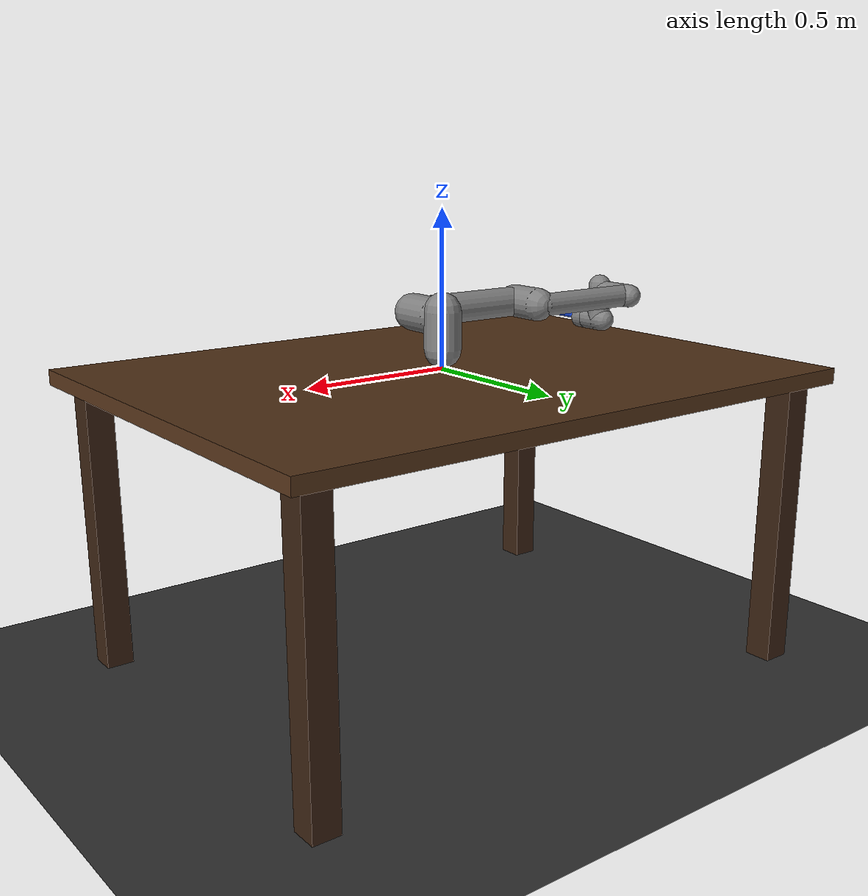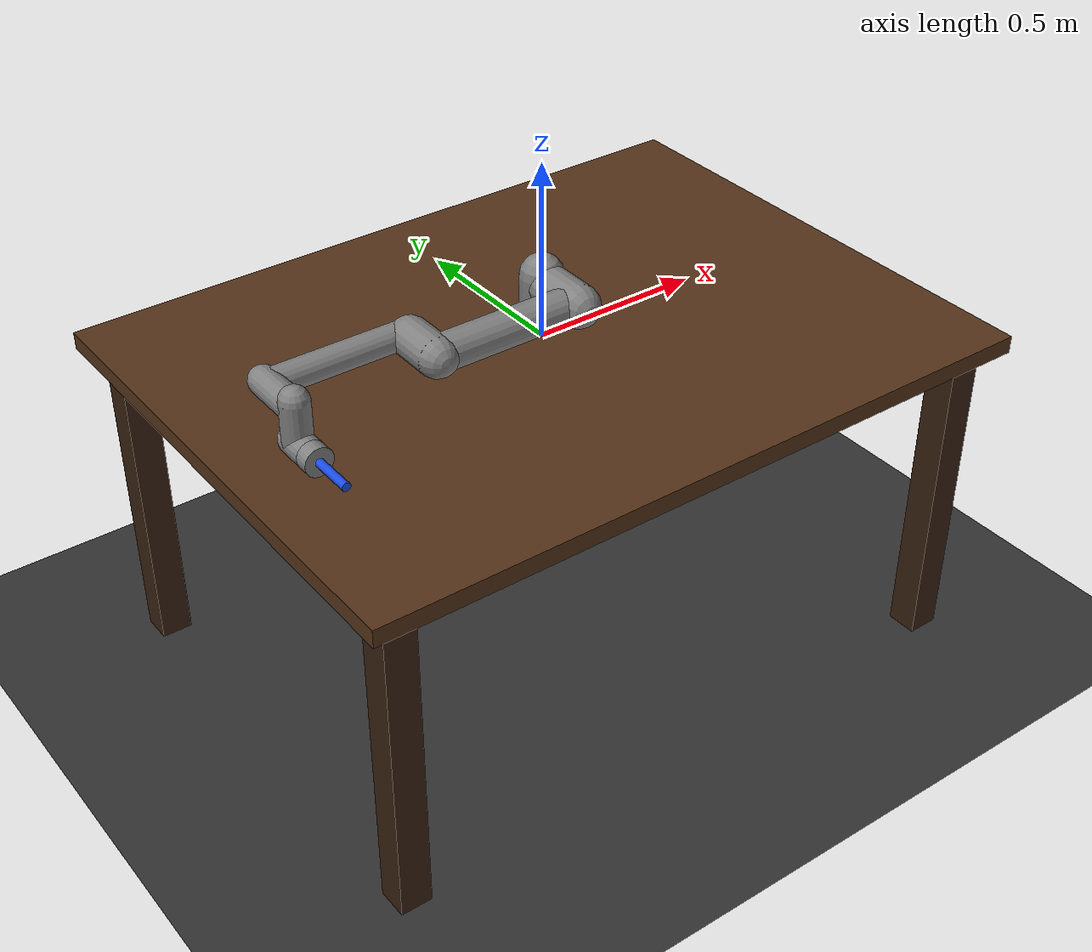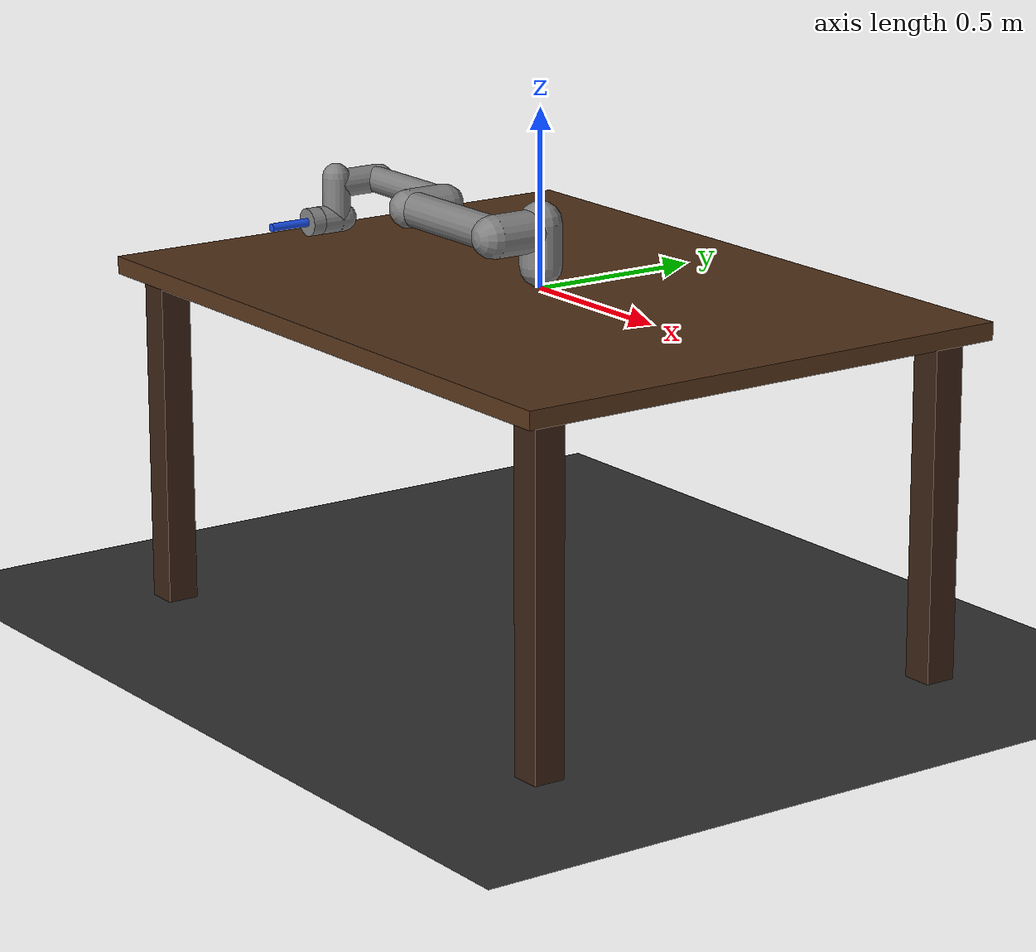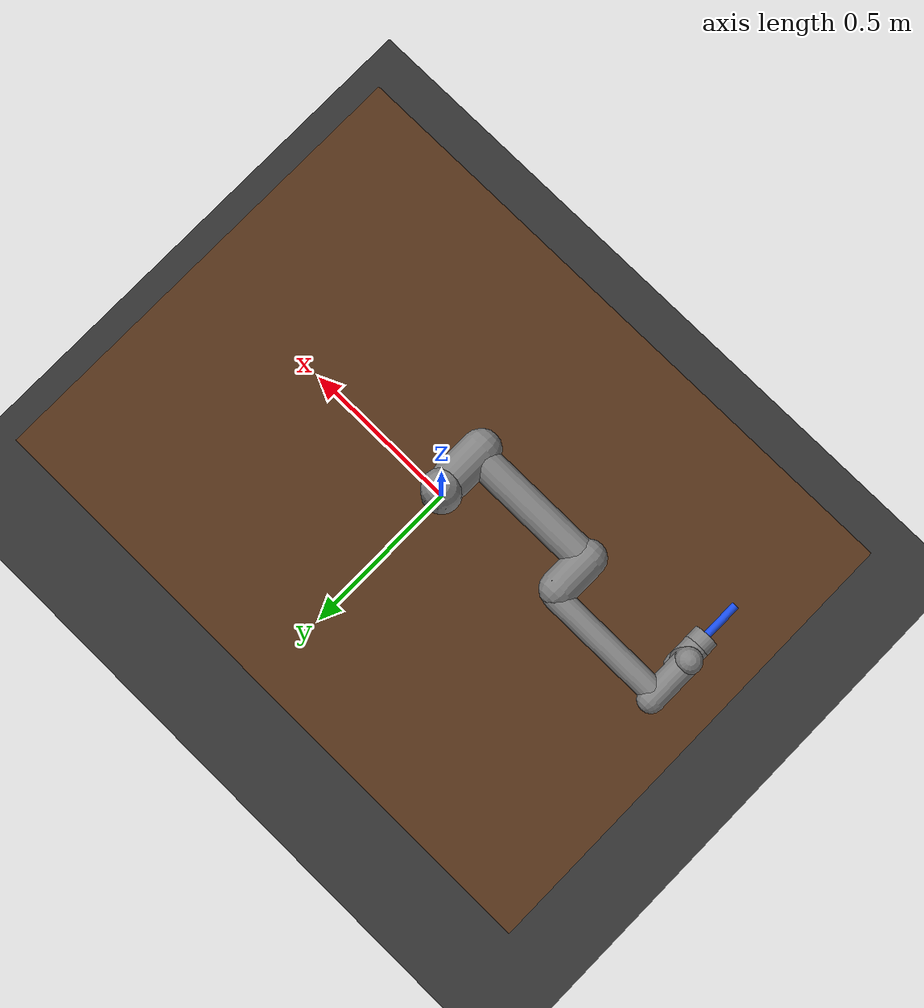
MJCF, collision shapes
<mujoco model="ur5e_table_scene">
  <compiler angle="radian" autolimits="true"/>

  <!-- UR5e from MuJoCo Menagerie.
       Do not change the robot physical model. -->
  <include file="ur5e_assignment.xml"/>

  <option timestep="0.002" gravity="0 0 -9.81"/>

  <statistic center="0.35 0 -0.1" extent="2.2"/>

  <visual>
    <global azimuth="135" elevation="-25"/>
    <headlight diffuse="0.6 0.6 0.6" ambient="0.2 0.2 0.2" specular="0.2 0.2 0.2"/>
  </visual>

  <asset>
    <texture name="floor_grid" type="2d" builtin="checker"
             width="512" height="512"
             rgb1="0.16 0.16 0.16" rgb2="0.24 0.24 0.24"/>

    <material name="floor_mat" texture="floor_grid" texrepeat="4 4" reflectance="0.15"/>
    <material name="table_top_mat" rgba="0.33 0.20 0.10 1"/>
    <material name="table_leg_mat" rgba="0.22 0.13 0.07 1"/>
  </asset>

  <worldbody>
    <!-- Floor is 1 m below the robot base/tabletop. -->
    <geom name="floor"
          type="plane"
          pos="0 0 -1.0"
          size="4 4 0.05"
          material="floor_mat"
          contype="1"
          conaffinity="1"/>

    <light name="key_light"
           pos="0 -3 3"
           dir="0 1 -1"
           diffuse="1 1 1"/>

    <light name="fill_light"
           pos="3 2 2"
           dir="-1 -1 -1"
           diffuse="0.45 0.45 0.45"/>

    <!--
      Assignment table dimensions:
      Full size: 2.0 m length x 1.5 m width x 1.0 m height
    -->

    <body name="table" pos="0 0 0">
      <geom name="table_top"
            type="box"
            pos="0 0 -0.025"
            size="1.0 0.75 0.025"
            material="table_top_mat"
            contype="1"
            conaffinity="1"/>

      <!--Legs-->
      <geom name="table_leg_front_left"
            type="box"
            pos="0.90 0.65 -0.525"
            size="0.045 0.045 0.475"
            material="table_leg_mat"
            contype="1"
            conaffinity="1"/>

      <geom name="table_leg_front_right"
            type="box"
            pos="0.90 -0.65 -0.525"
            size="0.045 0.045 0.475"
            material="table_leg_mat"
            contype="1"
            conaffinity="1"/>

      <geom name="table_leg_back_left"
            type="box"
            pos="-0.90 0.65 -0.525"
            size="0.045 0.045 0.475"
            material="table_leg_mat"
            contype="1"
            conaffinity="1"/>

      <geom name="table_leg_back_right"
            type="box"
            pos="-0.90 -0.65 -0.525"
            size="0.045 0.045 0.475"
            material="table_leg_mat"
            contype="1"
            conaffinity="1"/>
    </body>

  </worldbody>
</mujoco>

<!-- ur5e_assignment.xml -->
<mujoco model="ur5e">
  <compiler angle="radian" meshdir="assets" autolimits="true" />

  <option integrator="implicitfast" />

  <default>
    <default class="ur5e">
      <material specular="0.5" shininess="0.25" />
      <joint axis="0 1 0" range="-6.28319 6.28319" armature="0.1" />
      <general gaintype="fixed" biastype="affine" ctrlrange="-6.2831 6.2831" gainprm="2000" biasprm="0 -2000 -400" forcerange="-150 150" />
      <default class="size3">
        <default class="size3_limited">
          <joint range="-3.1415 3.1415" />
          <general ctrlrange="-3.1415 3.1415" />
        </default>
      </default>
      <default class="size1">
        <general gainprm="500" biasprm="0 -500 -100" forcerange="-28 28" />
      </default>
      <default class="visual">
        <geom type="mesh" contype="0" conaffinity="0" group="2" />
      </default>
      <default class="collision">
        <geom type="capsule" group="3" />
        <default class="eef_collision">
          <geom type="cylinder" />
        </default>
      </default>
      <site size="0.001" rgba="0.5 0.5 0.5 0.3" group="4" />
    </default>
  </default>

  <asset>
    <material class="ur5e" name="black" rgba="0.033 0.033 0.033 1" />
    <material class="ur5e" name="jointgray" rgba="0.278 0.278 0.278 1" />
    <material class="ur5e" name="linkgray" rgba="0.82 0.82 0.82 1" />
    <material class="ur5e" name="urblue" rgba="0.49 0.678 0.8 1" />

    <mesh file="assets/base_0.obj" />
    <mesh file="assets/base_1.obj" />
    <mesh file="assets/shoulder_0.obj" />
    <mesh file="assets/shoulder_1.obj" />
    <mesh file="assets/shoulder_2.obj" />
    <mesh file="assets/upperarm_0.obj" />
    <mesh file="assets/upperarm_1.obj" />
    <mesh file="assets/upperarm_2.obj" />
    <mesh file="assets/upperarm_3.obj" />
    <mesh file="assets/forearm_0.obj" />
    <mesh file="assets/forearm_1.obj" />
    <mesh file="assets/forearm_2.obj" />
    <mesh file="assets/forearm_3.obj" />
    <mesh file="assets/wrist1_0.obj" />
    <mesh file="assets/wrist1_1.obj" />
    <mesh file="assets/wrist1_2.obj" />
    <mesh file="assets/wrist2_0.obj" />
    <mesh file="assets/wrist2_1.obj" />
    <mesh file="assets/wrist2_2.obj" />
    <mesh file="assets/wrist3.obj" />
  </asset>

  <worldbody>
    <light name="spotlight" mode="targetbodycom" target="wrist_2_link" pos="0 -1 2" />
    <body name="base" quat="0 0 0 -1" childclass="ur5e">
      <inertial mass="4.0" pos="0 0 0" diaginertia="0.00443333156 0.00443333156 0.0072" />
      <geom mesh="base_0" material="black" class="visual" />
      <geom mesh="base_1" material="jointgray" class="visual" />
      <body name="shoulder_link" pos="0 0 0.163">
        <inertial mass="3.7" pos="0 0 0" diaginertia="0.0102675 0.0102675 0.00666" />
        <joint name="shoulder_pan_joint" class="size3" axis="0 0 1" />
        <geom mesh="shoulder_0" material="urblue" class="visual" />
        <geom mesh="shoulder_1" material="black" class="visual" />
        <geom mesh="shoulder_2" material="jointgray" class="visual" />
        <geom class="collision" size="0.06 0.06" pos="0 0 -0.04" />
        <body name="upper_arm_link" pos="0 0.138 0" quat="1 0 1 0">
          <inertial mass="8.393" pos="0 0 0.2125" diaginertia="0.133886 0.133886 0.0151074" />
          <joint name="shoulder_lift_joint" class="size3" />
          <geom mesh="upperarm_0" material="linkgray" class="visual" />
          <geom mesh="upperarm_1" material="black" class="visual" />
          <geom mesh="upperarm_2" material="jointgray" class="visual" />
          <geom mesh="upperarm_3" material="urblue" class="visual" />
          <geom class="collision" pos="0 -0.04 0" quat="1 1 0 0" size="0.06 0.06" />
          <geom class="collision" size="0.05 0.2" pos="0 0 0.2" />
          <body name="forearm_link" pos="0 -0.131 0.425">
            <inertial mass="2.275" pos="0 0 0.196" diaginertia="0.0311796 0.0311796 0.004095" />
            <joint name="elbow_joint" class="size3_limited" />
            <geom mesh="forearm_0" material="urblue" class="visual" />
            <geom mesh="forearm_1" material="linkgray" class="visual" />
            <geom mesh="forearm_2" material="black" class="visual" />
            <geom mesh="forearm_3" material="jointgray" class="visual" />
            <geom class="collision" pos="0 0.08 0" quat="1 1 0 0" size="0.055 0.06" />
            <geom class="collision" size="0.038 0.19" pos="0 0 0.2" />
            <body name="wrist_1_link" pos="0 0 0.392" quat="1 0 1 0">
              <inertial mass="1.219" pos="0 0.127 0" diaginertia="0.0025599 0.0025599 0.0021942" />
              <joint name="wrist_1_joint" class="size1" />
              <geom mesh="wrist1_0" material="black" class="visual" />
              <geom mesh="wrist1_1" material="urblue" class="visual" />
              <geom mesh="wrist1_2" material="jointgray" class="visual" />
              <geom class="collision" pos="0 0.05 0" quat="1 1 0 0" size="0.04 0.07" />
              <body name="wrist_2_link" pos="0 0.127 0">
                <inertial mass="1.219" pos="0 0 0.1" diaginertia="0.0025599 0.0025599 0.0021942" />
                <joint name="wrist_2_joint" axis="0 0 1" class="size1" />
                <geom mesh="wrist2_0" material="black" class="visual" />
                <geom mesh="wrist2_1" material="urblue" class="visual" />
                <geom mesh="wrist2_2" material="jointgray" class="visual" />
                <geom class="collision" size="0.04 0.06" pos="0 0 0.04" />
                <geom class="collision" pos="0 0.02 0.1" quat="1 1 0 0" size="0.04 0.04" />
                <body name="wrist_3_link" pos="0 0 0.1">
                  <inertial mass="0.1889" pos="0 0.0771683 0" quat="1 0 0 1" diaginertia="0.000132134 9.90863e-05 9.90863e-05" />
                  <joint name="wrist_3_joint" class="size1" />
                  <geom material="linkgray" mesh="wrist3" class="visual" />
                  <geom class="eef_collision" pos="0 0.08 0" quat="1 1 0 0" size="0.04 0.02" />
                  <site name="attachment_site" pos="0 0.1 0" quat="-1 1 0 0" />
                <body name="tool0" pos="0 0.1 0" quat="-1 1 0 0">
                  <geom name="ee_tool_geom" type="cylinder" fromto="0 0 0 0 0 0.12" size="0.012" rgba="0.1 0.3 0.9 1" contype="1" conaffinity="1" />
                    <body name="ee_link" pos="0 0 0.12">
                      <site name="ee_link_site" pos="0 0 0" size="0.006" rgba="1 0 0 1" />
                    </body>
                  </body>
                  </body>
              </body>
            </body>
          </body>
        </body>
      </body>
    </body>
  </worldbody>

  <actuator>
    <general class="size3" name="shoulder_pan" joint="shoulder_pan_joint" />
    <general class="size3" name="shoulder_lift" joint="shoulder_lift_joint" />
    <general class="size3_limited" name="elbow" joint="elbow_joint" />
    <general class="size1" name="wrist_1" joint="wrist_1_joint" />
    <general class="size1" name="wrist_2" joint="wrist_2_joint" />
    <general class="size1" name="wrist_3" joint="wrist_3_joint" />
  </actuator>

  <keyframe>
    <key name="home" qpos="-1.5708 -1.5708 1.5708 -1.5708 -1.5708 0" ctrl="-1.5708 -1.5708 1.5708 -1.5708 -1.5708 0" />
  </keyframe>
</mujoco>
